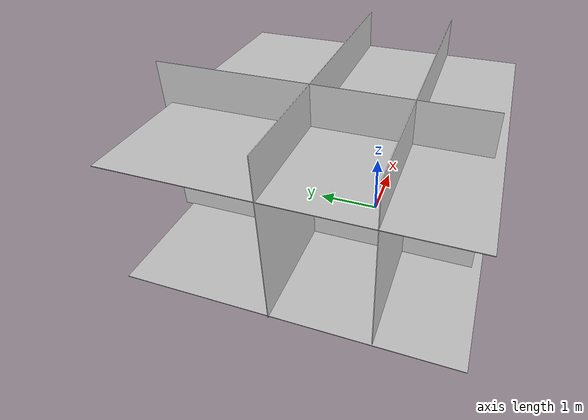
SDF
<sdf version="1.7">
 <world name="default">
  <model name="ground">
   <static>1</static>
   <link name="link">
    <pose>0 0 -0.005 0 -0 0</pose>
    <collision name="collision"><geometry><box><size>5 5 0.01</size></box></geometry></collision>
    <visual name="visual"><geometry><box><size>5 5 0.01</size></box></geometry></visual>
   </link>
   <pose>-0.2 0.6 0 0 -0 0</pose>
  </model>
  <model name="ground_1">
   <static>1</static>
   <link name="link">
    <pose>0 0 -0.005 0 -0 0</pose>
    <collision name="collision"><geometry><box><size>5 5 0.01</size></box></geometry></collision>
    <visual name="visual"><geometry><box><size>5 5 0.01</size></box></geometry></visual>
   </link>
   <pose>-0.2 0.6 2.02282 0 -0 0</pose>
  </model>
  <light name="lab_light" type="directional">
   <pose>0.86 1.96 2.5 -1.55 0 0</pose>
   <diffuse>0.8 0.8 0.8 1</diffuse>
   <specular>0.2 0.2 0.2 1</specular>
   <attenuation>
    <range>20</range>
    <constant>0.9</constant>
    <linear>0.01</linear>
    <quadratic>0.001</quadratic>
   </attenuation>
   <direction>0 0 -1</direction>
   <spot><inner_angle>0</inner_angle><outer_angle>0</outer_angle><falloff>0</falloff></spot>
  </light>
  <model name="stand_small">
   <static>1</static>
   <link name="link">
    <inertial><mass>20</mass></inertial>
    <collision name="collision">
     <geometry><mesh><uri>model://stand_small/meshes/stand_small.STL</uri></mesh></geometry>
    </collision>
    <visual name="visual">
     <geometry><mesh><uri>model://stand_small/meshes/stand_small.STL</uri></mesh></geometry>
    </visual>
   </link>
   <pose>-0.338887 -0.447438 0 0 -0 0</pose>
  </model>
  <model name="wall_1">
   <static>1</static>
   <link name="link">
    <collision name="collision_wall"><geometry><box><size>5 0.01 2.7</size></box></geometry></collision>
    <visual name="visual_wall">
     <geometry><box><size>5 0.01 2.7</size></box></geometry>
     <material>
      <script><uri>file://media/materials/scripts/gazebo.material</uri><name>Gazebo/White</name></script>
     </material>
    </visual>
   </link>
   <pose>-0.19 -0.671214 1.34 0 -0 0</pose>
  </model>
  <model name="wall_2">
   <static>1</static>
   <link name="link">
    <collision name="collision_wall"><geometry><box><size>5 0.01 2.7</size></box></geometry></collision>
    <visual name="visual_wall">
     <geometry><box><size>5 0.01 2.7</size></box></geometry>
     <material>
      <script><uri>file://media/materials/scripts/gazebo.material</uri><name>Gazebo/White</name></script>
     </material>
    </visual>
   </link>
   <pose>-0.902115 0.74006 1.34 0 -0 1.5708</pose>
  </model>
  <physics type="ode">
   <ode>
    <solver>
     <type>quick</type>
     <iters>100</iters>
     <precon_iters>0</precon_iters>
     <sor>1</sor>
     <use_dynamic_moi_rescaling>0</use_dynamic_moi_rescaling>
    </solver>
    <constraints>
     <cfm>0</cfm>
     <erp>0.5</erp>
     <contact_max_correcting_vel>1000</contact_max_correcting_vel>
     <contact_surface_layer>0</contact_surface_layer>
    </constraints>
   </ode>
   <real_time_factor>1</real_time_factor>
   <max_step_size>0.001</max_step_size>
   <real_time_update_rate>1000</real_time_update_rate>
  </physics>
  <scene><ambient>0.4 0.4 0.4 1</ambient><background>0.7 0.7 1 1</background><shadows>1</shadows></scene>
  <gravity>0 0 -9.81</gravity>
  <magnetic_field>6e-06 2.3e-05 -4.2e-05</magnetic_field>
  <atmosphere type="adiabatic"/>
  <spherical_coordinates>
   <surface_model>EARTH_WGS84</surface_model>
   <latitude_deg>0</latitude_deg>
   <longitude_deg>0</longitude_deg>
   <elevation>0</elevation>
   <heading_deg>0</heading_deg>
  </spherical_coordinates>
  <model name="fst_rig_base">
   <static>1</static>
   <static>1</static>
   <link name="link">
    <collision name="collision_fst_rig"><geometry><box><size>0.16 0.19 0.86</size></box></geometry></collision>
    <visual name="visual_fst_rig">
     <geometry><box><size>0.16 0.19 0.86</size></box></geometry>
     <material>
      <script><uri>file://media/materials/scripts/gazebo.material</uri><name>Gazebo/Red</name></script>
     </material>
    </visual>
   </link>
   <pose>1.04012 0.003974 0.431554 0 -0 0</pose>
  </model>
  <model name="fst_rig_plate">
   <static>1</static>
   <static>1</static>
   <link name="link">
    <collision name="collision_fst_rig"><geometry><box><size>0.64 0.1 0.8</size></box></geometry></collision>
    <visual name="visual_fst_rig">
     <geometry><box><size>0.64 0.1 0.8</size></box></geometry>
     <material>
      <script><uri>file://media/materials/scripts/gazebo.material</uri><name>Gazebo/Black</name></script>
     </material>
    </visual>
   </link>
   <pose>0.635238 0.00461 0.400881 0 -0 0</pose>
  </model>
  <model name="wall">
   <static>1</static>
   <link name="link">
    <collision name="collision_wall"><geometry><box><size>5 0.01 2.7</size></box></geometry></collision>
    <visual name="visual_wall">
     <geometry><box><size>5 0.01 2.7</size></box></geometry>
     <material>
      <script><uri>file://media/materials/scripts/gazebo.material</uri><name>Gazebo/White</name></script>
     </material>
    </visual>
   </link>
   <pose>-0.220401 0.801949 1.33552 0 -0 0</pose>
  </model>
 </world>
</sdf>
